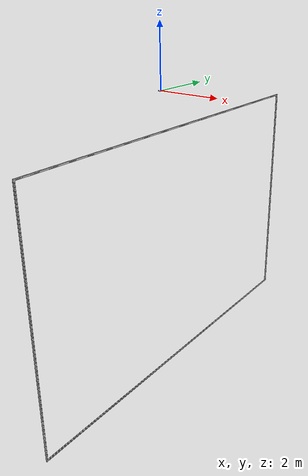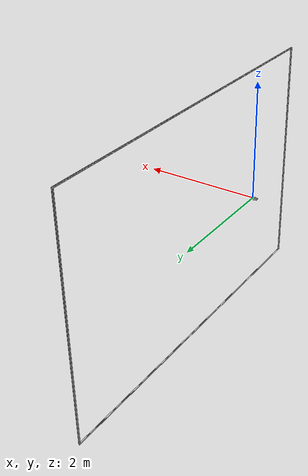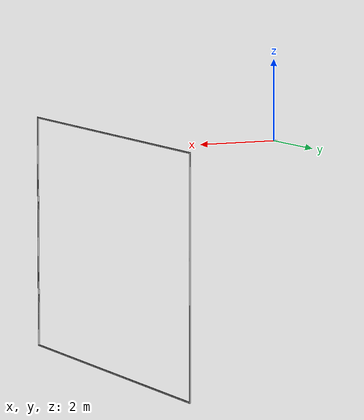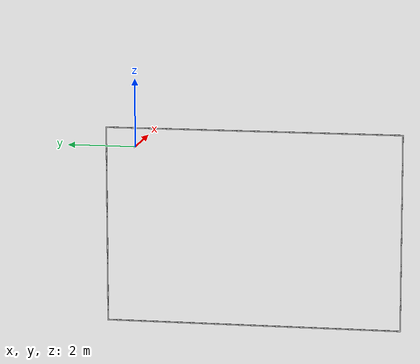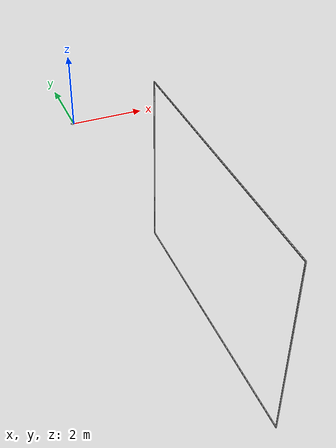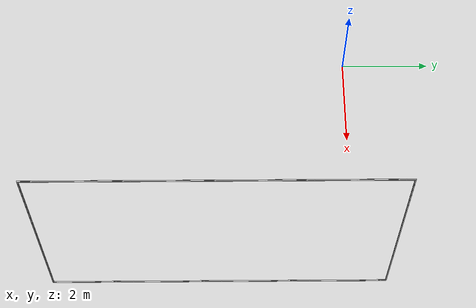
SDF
<sdf version='1.7'>
  <model name='test'>
    <link name='base_link'>
      <inertial>
        <pose>0.998366 -2.98877 -2.93203 0 -0 0</pose>
        <mass>830.341</mass>
        <inertia>
          <ixx>1258.32</ixx>
          <ixy>0.499868</ixy>
          <ixz>-133.69</ixz>
          <iyy>1219.44</iyy>
          <iyz>1.3748</iyz>
          <izz>918.72</izz>
        </inertia>
      </inertial>
      <collision name='base_link_collision'>
        <pose>0 0 0 0 -0 0</pose>
        <geometry>
          <mesh>
            <scale>1 1 1</scale>
            <uri>model://test/meshes/base_link.STL</uri>
          </mesh>
        </geometry>
      </collision>
      <collision name='base_link_fixed_joint_lump__link1_collision_1'>
        <pose>0 0.01 0 1.5708 -0 0</pose>
        <geometry>
          <mesh>
            <scale>1 1 1</scale>
            <uri>model://test/meshes/link1.STL</uri>
          </mesh>
        </geometry>
      </collision>
      <visual name='base_link_visual'>
        <pose>0 0 0 0 -0 0</pose>
        <geometry>
          <mesh>
            <scale>1 1 1</scale>
            <uri>model://test/meshes/base_link.STL</uri>
          </mesh>
        </geometry>
      </visual>
      <visual name='base_link_fixed_joint_lump__link1_visual_1'>
        <pose>0 0.01 0 1.5708 -0 0</pose>
        <geometry>
          <mesh>
            <scale>1 1 1</scale>
            <uri>model://test/meshes/link1.STL</uri>
          </mesh>
        </geometry>
      </visual>
    </link>
    <frame name='joint1' attached_to='base_link'>
      <pose>0 0.01 0 1.5708 -0 0</pose>
    </frame>
    <frame name='link1' attached_to='joint1'/>
  </model>
</sdf>
